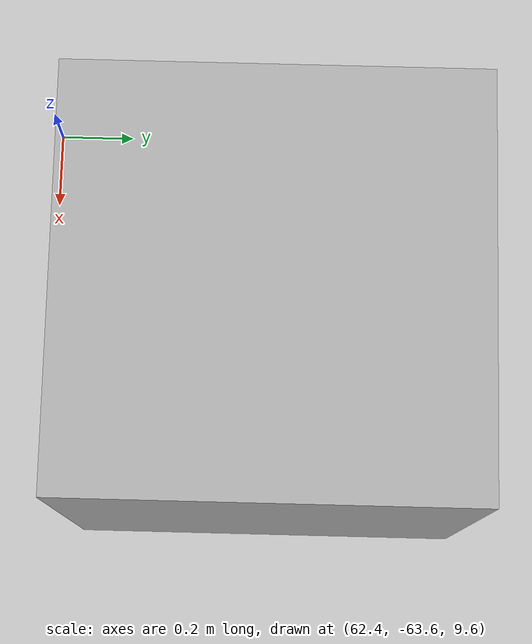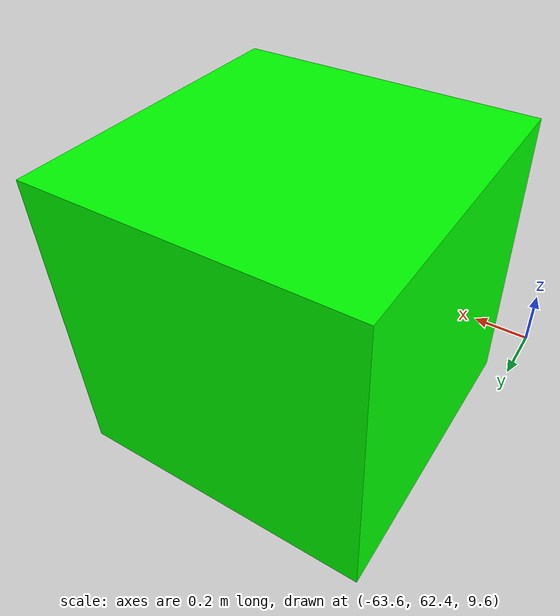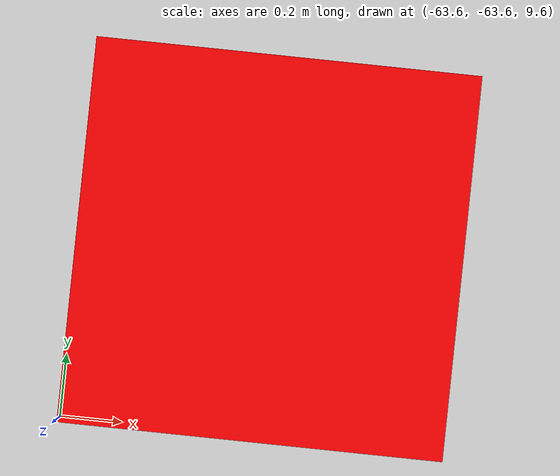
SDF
<sdf version="1.4">
 <world name="default">
  <include><uri>model://sun</uri></include>
  <model name="box1">
   <pose>-63.0 -63. 10 0 0 0</pose>
   <link name="link">
    <collision name="collision"><geometry><box><size>1 1 1</size></box></geometry></collision>
    <visual name="visual">
     <geometry><box><size>1 1 1</size></box></geometry>
     <material><ambient>1 0 0 1</ambient><diffuse>1 0 0 1</diffuse></material>
    </visual>
   </link>
  </model>
  <model name="box2">
   <pose>-63.0 63.0 10 0 0 0</pose>
   <link name="link">
    <collision name="collision"><geometry><box><size>1 1 1</size></box></geometry></collision>
    <visual name="visual">
     <geometry><box><size>1 1 1</size></box></geometry>
     <material><ambient>0 1 0 1</ambient><diffuse>0 1 0 1</diffuse></material>
    </visual>
   </link>
  </model>
  <model name="box3">
   <pose>63 63.0 10 0 0 0</pose>
   <link name="link">
    <collision name="collision"><geometry><box><size>1 1 1</size></box></geometry></collision>
    <visual name="visual">
     <geometry><box><size>1 1 1</size></box></geometry>
     <material><ambient>0 0 1 1</ambient><diffuse>0 0 1 1</diffuse></material>
    </visual>
   </link>
  </model>
  <model name="box4">
   <pose>63 -63.0 10 0 0 0</pose>
   <link name="link">
    <collision name="collision"><geometry><box><size>1 1 1</size></box></geometry></collision>
    <visual name="visual"><geometry><box><size>1 1 1</size></box></geometry></visual>
    <sensor name="gps" type="gps">
     <update_rate>10.0</update_rate>
     <always_on>true</always_on>
     <gps>
      <position_sensing>
       <horizontal>
        <noise type="gaussian_quantized">
         <mean>0</mean>
         <stddev>1</stddev>
         <bias_mean>3</bias_mean>
         <bias_stddev>1</bias_stddev>
         <precision>0.5</precision>
        </noise>
       </horizontal>
       <vertical>
        <noise type="gaussian_quantized">
         <mean>0</mean>
         <stddev>1</stddev>
         <bias_mean>3</bias_mean>
         <bias_stddev>1</bias_stddev>
         <precision>1.0</precision>
        </noise>
       </vertical>
      </position_sensing>
      <velocity_sensing>
       <horizontal>
        <noise type="gaussian_quantized">
         <mean>0</mean>
         <stddev>0.1</stddev>
         <bias_mean>0.1</bias_mean>
         <bias_stddev>0.1</bias_stddev>
         <precision>0.1</precision>
        </noise>
       </horizontal>
       <vertical>
        <noise type="gaussian_quantized">
         <mean>0</mean>
         <stddev>0.2</stddev>
         <bias_mean>0.2</bias_mean>
         <bias_stddev>0.2</bias_stddev>
         <precision>0.2</precision>
        </noise>
       </vertical>
      </velocity_sensing>
     </gps>
    </sensor>
   </link>
  </model>
 </world>
</sdf>
